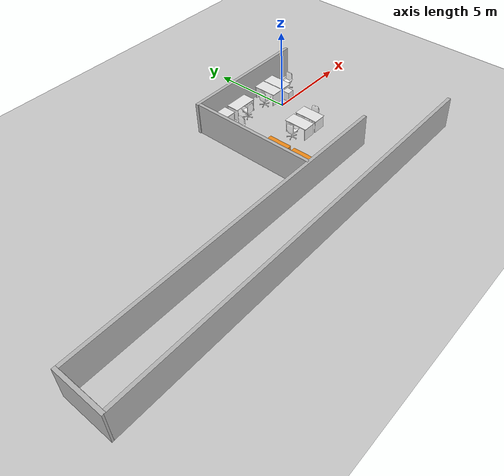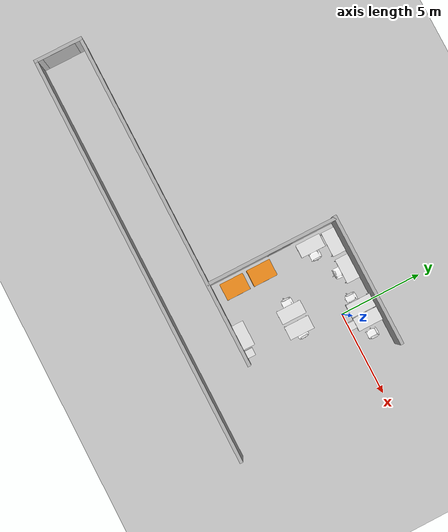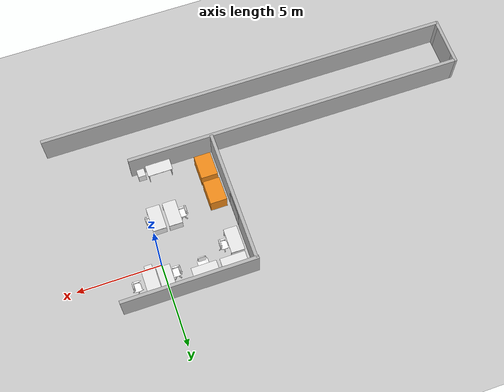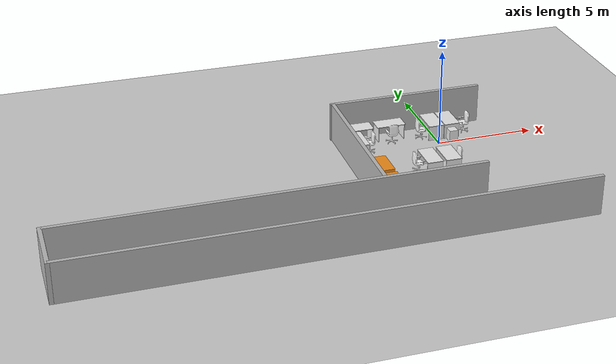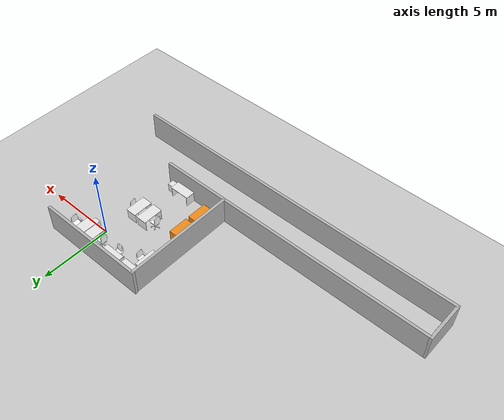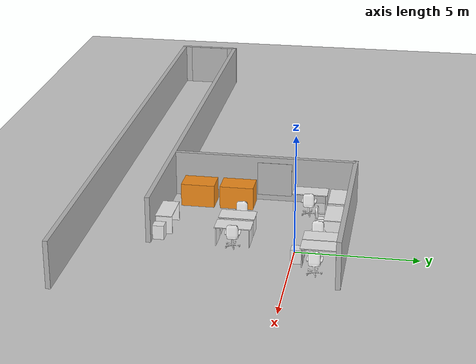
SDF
<sdf version="1.10">
 <world name="corridor">
  <model name="ground_plane">
   <static>1</static>
   <link name="link">
    <collision name="collision">
     <geometry>
      <plane><normal>0.000000 0.000000 1.000000</normal><size>100.000000 100.000000</size></plane>
     </geometry>
     <surface><friction><ode><mu>100.000000</mu><mu2>50.000000</mu2></ode></friction></surface>
    </collision>
    <visual name="visual">
     <cast_shadows>0</cast_shadows>
     <geometry>
      <plane><normal>0.000000 0.000000 1.000000</normal><size>100.000000 100.000000</size></plane>
     </geometry>
     <material>
      <script><uri>file://media/materials/scripts/gazebo.material</uri><name>Gazebo/Grey</name></script>
     </material>
    </visual>
    <velocity_decay><linear>0.000000</linear><angular>0.000000</angular></velocity_decay>
   </link>
  </model>
  <model name="wall_01_model">
   <pose>-8 -8.8 1.0 0.0 0.0 0.0</pose>
   <static>1</static>
   <link name="wall_01_body">
    <inertial>
     <mass>1.000000</mass>
     <inertia>
      <ixx>1.000000</ixx>
      <ixy>0.000000</ixy>
      <ixz>0.000000</ixz>
      <iyy>1.000000</iyy>
      <iyz>0.000000</iyz>
      <izz>1.000000</izz>
     </inertia>
    </inertial>
    <collision name="collision">
     <geometry><box><size>25.00000 0.200000 2.000000</size></box></geometry>
    </collision>
    <visual name="visual"><geometry><box><size>25.00000 0.200000 2.000000</size></box></geometry></visual>
    <velocity_decay><linear>0.000000</linear><angular>0.000000</angular></velocity_decay>
   </link>
  </model>
  <model name="wall_27_model">
   <pose>-20.5 -7.4 1.0 0.0 0.0 0.0</pose>
   <static>1</static>
   <link name="wall_27_body">
    <inertial>
     <mass>1.000000</mass>
     <inertia>
      <ixx>1.000000</ixx>
      <ixy>0.000000</ixy>
      <ixz>0.000000</ixz>
      <iyy>1.000000</iyy>
      <iyz>0.000000</iyz>
      <izz>1.000000</izz>
     </inertia>
    </inertial>
    <collision name="collision">
     <geometry><box><size>0.200000 3.000000 2.000000</size></box></geometry>
    </collision>
    <visual name="visual"><geometry><box><size>0.200000 3.000000 2.000000</size></box></geometry></visual>
    <velocity_decay><linear>0.000000</linear><angular>0.000000</angular></velocity_decay>
   </link>
  </model>
  <model name="wall_32_model">
   <pose>-1.15 2.0 1.0 0.0 0.0 0.0</pose>
   <static>1</static>
   <link name="wall_32_body">
    <inertial>
     <mass>1.000000</mass>
     <inertia>
      <ixx>1.000000</ixx>
      <ixy>0.000000</ixy>
      <ixz>0.000000</ixz>
      <iyy>1.000000</iyy>
      <iyz>0.000000</iyz>
      <izz>1.000000</izz>
     </inertia>
    </inertial>
    <collision name="collision">
     <geometry><box><size>8.000000 0.200000 2.000000</size></box></geometry>
    </collision>
    <visual name="visual"><geometry><box><size>8.000000 0.200000 2.000000</size></box></geometry></visual>
    <velocity_decay><linear>0.000000</linear><angular>0.000000</angular></velocity_decay>
   </link>
  </model>
  <model name="wall_33_model">
   <pose>-5.0 -2 1.0 0.0 0.0 0.0</pose>
   <static>1</static>
   <link name="wall_33_body">
    <inertial>
     <mass>1.000000</mass>
     <inertia>
      <ixx>1.000000</ixx>
      <ixy>0.000000</ixy>
      <ixz>0.000000</ixz>
      <iyy>1.000000</iyy>
      <iyz>0.000000</iyz>
      <izz>1.000000</izz>
     </inertia>
    </inertial>
    <collision name="collision">
     <geometry><box><size>0.200000 8.000000 2.000000</size></box></geometry>
    </collision>
    <visual name="visual"><geometry><box><size>0.200000 8.000000 2.000000</size></box></geometry></visual>
    <velocity_decay><linear>0.000000</linear><angular>0.000000</angular></velocity_decay>
   </link>
  </model>
  <model name="wall_35_model">
   <pose>-10.2 -6 1.0 0.0 0.0 0.0</pose>
   <static>1</static>
   <link name="wall_35_body">
    <inertial>
     <mass>1.000000</mass>
     <inertia>
      <ixx>1.000000</ixx>
      <ixy>0.000000</ixy>
      <ixz>0.000000</ixz>
      <iyy>1.000000</iyy>
      <iyz>0.000000</iyz>
      <izz>1.000000</izz>
     </inertia>
    </inertial>
    <collision name="collision"><geometry><box><size>20.5000 0.200000 2.000000</size></box></geometry></collision>
    <visual name="visual"><geometry><box><size>20.50000 0.200000 2.000000</size></box></geometry></visual>
    <velocity_decay><linear>0.000000</linear><angular>0.000000</angular></velocity_decay>
   </link>
  </model>
  <model name="poster_1_model">
   <pose>-4.88 -1.5 1.0 0.0 0.0 0.0</pose>
   <static>1</static>
   <link name="poster_1_body">
    <inertial>
     <mass>1.000000</mass>
     <inertia>
      <ixx>1.000000</ixx>
      <ixy>0.000000</ixy>
      <ixz>0.000000</ixz>
      <iyy>1.000000</iyy>
      <iyz>0.000000</iyz>
      <izz>1.000000</izz>
     </inertia>
    </inertial>
    <collision name="collision"><geometry><box><size>0.01000 1.5000 1.500000</size></box></geometry></collision>
    <visual name="visual">
     <geometry><box><size>0.01000 1.50000 1.500000</size></box></geometry>
     <material>
      <script>
       <uri>/home/marat/exchange_project_ws/src/collab_industrial_research/gz_world_package/models/materials/scripts/lirs.material</uri>
       <name>lirs/LIRS_wall</name>
      </script>
     </material>
    </visual>
    <velocity_decay><linear>0.000000</linear><angular>0.000000</angular></velocity_decay>
   </link>
  </model>
  <model name="poster_2_model">
   <pose>-20.4 -7.4 1.0 0.0 0.0 0.0</pose>
   <static>1</static>
   <link name="poster_2_body">
    <inertial>
     <mass>1.000000</mass>
     <inertia>
      <ixx>1.000000</ixx>
      <ixy>0.000000</ixy>
      <ixz>0.000000</ixz>
      <iyy>1.000000</iyy>
      <iyz>0.000000</iyz>
      <izz>1.000000</izz>
     </inertia>
    </inertial>
    <collision name="collision"><geometry><box><size>0.01000 2.0000 2.000000</size></box></geometry></collision>
    <visual name="visual">
     <geometry><box><size>0.01000 2.00000 2.000000</size></box></geometry>
     <material>
      <script>
       <uri>/home/marat/exchange_project_ws/src/collab_industrial_research/gz_world_package/models/materials/scripts/lirs.material</uri>
       <name>lirs/LIRS_wall</name>
      </script>
     </material>
    </visual>
    <velocity_decay><linear>0.000000</linear><angular>0.000000</angular></velocity_decay>
   </link>
  </model>
  <model name="cabinet_1">
   <static>0</static>
   <link name="cabinet_bottom_plate">
    <inertial>
     <pose>0.000000 0.000000 -1.000000 0.000000 0.000000 0.000000</pose>
     <inertia>
      <ixx>2.050000</ixx>
      <ixy>0.000000</ixy>
      <ixz>0.000000</ixz>
      <iyy>2.050000</iyy>
      <iyz>0.000000</iyz>
      <izz>2.050000</izz>
     </inertia>
     <mass>25.000000</mass>
    </inertial>
    <collision name="cabinet_bottom_plate_geom">
     <pose>0.000000 0.000000 0.010000 0.000000 0.000000 0.000000</pose>
     <geometry><box><size>1.0000 1.450000 1.00000</size></box></geometry>
    </collision>
    <visual name="cabinet_bottom_plate_geom_visual">
     <pose>0.000000 0.000000 0.010000 0.000000 0.000000 0.000000</pose>
     <geometry><box><size>1.00000 1.450000 1.0000</size></box></geometry>
     <material>
      <script>
       <uri>/home/marat/exchange_project_ws/src/collab_industrial_research/gz_world_package/models/materials/scripts/lirs.material</uri>
       <name>lirs/Orange_table</name>
      </script>
     </material>
    </visual>
    <velocity_decay><linear>0.000000</linear><angular>0.000000</angular></velocity_decay>
   </link>
   <pose>-4.2 -3 0.5 0.0 0.0 0.0</pose>
  </model>
  <model name="cabinet_2">
   <static>0</static>
   <link name="cabinet_bottom_plate">
    <inertial>
     <pose>0.000000 0.000000 -1.000000 0.000000 0.000000 0.000000</pose>
     <inertia>
      <ixx>2.050000</ixx>
      <ixy>0.000000</ixy>
      <ixz>0.000000</ixz>
      <iyy>2.050000</iyy>
      <iyz>0.000000</iyz>
      <izz>2.050000</izz>
     </inertia>
     <mass>25.000000</mass>
    </inertial>
    <collision name="cabinet_bottom_plate_geom">
     <pose>0.000000 0.000000 0.010000 0.000000 0.000000 0.000000</pose>
     <geometry><box><size>1.0000 1.450000 1.00000</size></box></geometry>
    </collision>
    <visual name="cabinet_bottom_plate_geom_visual">
     <pose>0.000000 0.000000 0.010000 0.000000 0.000000 0.000000</pose>
     <geometry><box><size>1.00000 1.450000 1.0000</size></box></geometry>
     <material>
      <script>
       <uri>/home/marat/exchange_project_ws/src/collab_industrial_research/gz_world_package/models/materials/scripts/lirs.material</uri>
       <name>lirs/Orange_table</name>
      </script>
     </material>
    </visual>
    <velocity_decay><linear>0.000000</linear><angular>0.000000</angular></velocity_decay>
   </link>
   <pose>-4.2 -4.7 0.5 0.0 0.0 0.0</pose>
  </model>
  <model name="cabinet_4">
   <static>0</static>
   <link name="cabinet_bottom_plate">
    <inertial>
     <pose>0.000000 0.000000 -1.000000 0.000000 0.000000 0.000000</pose>
     <inertia>
      <ixx>2.050000</ixx>
      <ixy>0.000000</ixy>
      <ixz>0.000000</ixz>
      <iyy>2.050000</iyy>
      <iyz>0.000000</iyz>
      <izz>2.050000</izz>
     </inertia>
     <mass>25.000000</mass>
    </inertial>
    <collision name="cabinet_bottom_plate_geom">
     <pose>0.000000 0.000000 0.010000 0.000000 0.000000 0.000000</pose>
     <geometry><box><size>0.4500 0.490000 .6000</size></box></geometry>
    </collision>
    <visual name="cabinet_bottom_plate_geom_visual">
     <pose>0.000000 0.000000 0.010000 0.000000 0.000000 0.000000</pose>
     <geometry><box><size>0.4500 0.490000 .6000</size></box></geometry>
     <material>
      <script>
       <uri>/home/marat/exchange_project_ws/src/collab_industrial_research/gz_world_package/models/materials/scripts/lirs.material</uri>
       <name>lirs/White_table</name>
      </script>
     </material>
    </visual>
    <velocity_decay><linear>0.000000</linear><angular>0.000000</angular></velocity_decay>
   </link>
   <pose>-0.50000 -5.67000 0.300000 0.000000 0.000000 0.000000</pose>
  </model>
  <model name="cabinet_5">
   <static>0</static>
   <link name="cabinet_bottom_plate">
    <inertial>
     <pose>0.000000 0.000000 -1.000000 0.000000 0.000000 0.000000</pose>
     <inertia>
      <ixx>2.050000</ixx>
      <ixy>0.000000</ixy>
      <ixz>0.000000</ixz>
      <iyy>2.050000</iyy>
      <iyz>0.000000</iyz>
      <izz>2.050000</izz>
     </inertia>
     <mass>25.000000</mass>
    </inertial>
    <collision name="cabinet_bottom_plate_geom">
     <pose>0.000000 0.000000 0.010000 0.000000 0.000000 0.000000</pose>
     <geometry><box><size>0.4500 0.490000 .6000</size></box></geometry>
    </collision>
    <visual name="cabinet_bottom_plate_geom_visual">
     <pose>0.000000 0.000000 0.010000 0.000000 0.000000 0.000000</pose>
     <geometry><box><size>0.4500 0.490000 .6000</size></box></geometry>
     <material>
      <script>
       <uri>/home/marat/exchange_project_ws/src/collab_industrial_research/gz_world_package/models/materials/scripts/lirs.material</uri>
       <name>lirs/White_table</name>
      </script>
     </material>
    </visual>
    <velocity_decay><linear>0.000000</linear><angular>0.000000</angular></velocity_decay>
   </link>
   <pose>0.79 0.2000 0.300000 0.000000 0.000000 0.000000</pose>
  </model>
  <model name="table_0">
   <static>0</static>
   <link name="link">
    <collision name="surface">
     <pose>0.000000 0.000000 0.800000 0.000000 0.000000 0.000000</pose>
     <geometry><box><size>1.500000 0.800000 0.030000</size></box></geometry>
    </collision>
    <visual name="visual1">
     <pose>0.000000 0.000000 0.8000000 0.000000 0.000000 0.000000</pose>
     <geometry><box><size>1.500000 0.800000 0.030000</size></box></geometry>
     <material>
      <script>
       <uri>/home/marat/exchange_project_ws/src/collab_industrial_research/gz_world_package/models/materials/scripts/lirs.material</uri>
       <name>lirs/White_table</name>
      </script>
     </material>
    </visual>
    <collision name="front_left_leg">
     <pose>0.680000 0.00000 0.400000 0.000000 0.000000 0.000000</pose>
     <geometry><box><size>0.0300000 0.800000 0.8</size></box></geometry>
    </collision>
    <visual name="front_left_leg">
     <pose>0.680000 0.00000 0.400000 0.000000 0.000000 0.000000</pose>
     <geometry><box><size>0.0300000 0.800000 0.8</size></box></geometry>
     <material>
      <script>
       <uri>/home/marat/exchange_project_ws/src/collab_industrial_research/gz_world_package/models/materials/scripts/lirs.material</uri>
       <name>lirs/White_table</name>
      </script>
     </material>
    </visual>
    <collision name="front_right_leg">
     <pose>-0.680000 0.00000 0.400000 0.000000 0.000000 0.000000</pose>
     <geometry><box><size>0.0300000 0.800000 0.8</size></box></geometry>
    </collision>
    <visual name="front_right_leg">
     <pose>-0.680000 0.00000 0.400000 0.000000 0.000000 0.000000</pose>
     <geometry><box><size>0.0300000 0.800000 0.8</size></box></geometry>
     <material>
      <script>
       <uri>/home/marat/exchange_project_ws/src/collab_industrial_research/gz_world_package/models/materials/scripts/lirs.material</uri>
       <name>lirs/White_table</name>
      </script>
     </material>
    </visual>
    <velocity_decay><linear>0.000000</linear><angular>0.000000</angular></velocity_decay>
   </link>
   <pose>-4.30000 0.15000 0.000000 0.000000 0.000000 -1.570796</pose>
  </model>
  <model name="table_01">
   <static>0</static>
   <link name="link">
    <collision name="surface">
     <pose>0.000000 0.000000 0.800000 0.000000 0.000000 0.000000</pose>
     <geometry><box><size>1.500000 0.800000 0.030000</size></box></geometry>
    </collision>
    <visual name="visual1">
     <pose>0.000000 0.000000 0.8000000 0.000000 0.000000 0.000000</pose>
     <geometry><box><size>1.500000 0.800000 0.030000</size></box></geometry>
     <material>
      <script>
       <uri>/home/marat/exchange_project_ws/src/collab_industrial_research/gz_world_package/models/materials/scripts/lirs.material</uri>
       <name>lirs/White_table</name>
      </script>
     </material>
    </visual>
    <collision name="front_left_leg">
     <pose>0.680000 0.00000 0.400000 0.000000 0.000000 0.000000</pose>
     <geometry><box><size>0.0300000 0.800000 0.8</size></box></geometry>
    </collision>
    <visual name="front_left_leg">
     <pose>0.680000 0.00000 0.400000 0.000000 0.000000 0.000000</pose>
     <geometry><box><size>0.0300000 0.800000 0.8</size></box></geometry>
     <material>
      <script>
       <uri>/home/marat/exchange_project_ws/src/collab_industrial_research/gz_world_package/models/materials/scripts/lirs.material</uri>
       <name>lirs/White_table</name>
      </script>
     </material>
    </visual>
    <collision name="front_right_leg">
     <pose>-0.680000 0.00000 0.400000 0.000000 0.000000 0.000000</pose>
     <geometry><box><size>0.0300000 0.800000 0.8</size></box></geometry>
    </collision>
    <visual name="front_right_leg">
     <pose>-0.680000 0.00000 0.400000 0.000000 0.000000 0.000000</pose>
     <geometry><box><size>0.0300000 0.800000 0.8</size></box></geometry>
     <material>
      <script>
       <uri>/home/marat/exchange_project_ws/src/collab_industrial_research/gz_world_package/models/materials/scripts/lirs.material</uri>
       <name>lirs/White_table</name>
      </script>
     </material>
    </visual>
    <velocity_decay><linear>0.000000</linear><angular>0.000000</angular></velocity_decay>
   </link>
   <pose>-3.9000 1.40000 0.000000 0.000000 0.000000 0</pose>
  </model>
  <model name="table_02">
   <static>0</static>
   <link name="link">
    <collision name="surface">
     <pose>0.000000 0.000000 0.800000 0.000000 0.000000 0.000000</pose>
     <geometry><box><size>1.500000 0.800000 0.030000</size></box></geometry>
    </collision>
    <visual name="visual1">
     <pose>0.000000 0.000000 0.8000000 0.000000 0.000000 0.000000</pose>
     <geometry><box><size>1.500000 0.800000 0.030000</size></box></geometry>
     <material>
      <script>
       <uri>/home/marat/exchange_project_ws/src/collab_industrial_research/gz_world_package/models/materials/scripts/lirs.material</uri>
       <name>lirs/White_table</name>
      </script>
     </material>
    </visual>
    <collision name="front_left_leg">
     <pose>0.680000 0.00000 0.400000 0.000000 0.000000 0.000000</pose>
     <geometry><box><size>0.0300000 0.800000 0.8</size></box></geometry>
    </collision>
    <visual name="front_left_leg">
     <pose>0.680000 0.00000 0.400000 0.000000 0.000000 0.000000</pose>
     <geometry><box><size>0.0300000 0.800000 0.8</size></box></geometry>
     <material>
      <script>
       <uri>/home/marat/exchange_project_ws/src/collab_industrial_research/gz_world_package/models/materials/scripts/lirs.material</uri>
       <name>lirs/White_table</name>
      </script>
     </material>
    </visual>
    <collision name="front_right_leg">
     <pose>-0.680000 0.00000 0.400000 0.000000 0.000000 0.000000</pose>
     <geometry><box><size>0.0300000 0.800000 0.8</size></box></geometry>
    </collision>
    <visual name="front_right_leg">
     <pose>-0.680000 0.00000 0.400000 0.000000 0.000000 0.000000</pose>
     <geometry><box><size>0.0300000 0.800000 0.8</size></box></geometry>
     <material>
      <script>
       <uri>/home/marat/exchange_project_ws/src/collab_industrial_research/gz_world_package/models/materials/scripts/lirs.material</uri>
       <name>lirs/White_table</name>
      </script>
     </material>
    </visual>
    <velocity_decay><linear>0.000000</linear><angular>0.000000</angular></velocity_decay>
   </link>
   <pose>-2.2000 1.40000 0.000000 0.000000 0.000000 0</pose>
  </model>
  <model name="table_03">
   <static>0</static>
   <link name="link">
    <collision name="surface">
     <pose>0.000000 0.000000 0.800000 0.000000 0.000000 0.000000</pose>
     <geometry><box><size>1.500000 0.800000 0.030000</size></box></geometry>
    </collision>
    <visual name="visual1">
     <pose>0.000000 0.000000 0.8000000 0.000000 0.000000 0.000000</pose>
     <geometry><box><size>1.500000 0.800000 0.030000</size></box></geometry>
     <material>
      <script>
       <uri>/home/marat/exchange_project_ws/src/collab_industrial_research/gz_world_package/models/materials/scripts/lirs.material</uri>
       <name>lirs/White_table</name>
      </script>
     </material>
    </visual>
    <collision name="front_left_leg">
     <pose>0.680000 0.00000 0.400000 0.000000 0.000000 0.000000</pose>
     <geometry><box><size>0.0300000 0.800000 0.8</size></box></geometry>
    </collision>
    <visual name="front_left_leg">
     <pose>0.680000 0.00000 0.400000 0.000000 0.000000 0.000000</pose>
     <geometry><box><size>0.0300000 0.800000 0.8</size></box></geometry>
     <material>
      <script>
       <uri>/home/marat/exchange_project_ws/src/collab_industrial_research/gz_world_package/models/materials/scripts/lirs.material</uri>
       <name>lirs/White_table</name>
      </script>
     </material>
    </visual>
    <collision name="front_right_leg">
     <pose>-0.680000 0.00000 0.400000 0.000000 0.000000 0.000000</pose>
     <geometry><box><size>0.0300000 0.800000 0.8</size></box></geometry>
    </collision>
    <visual name="front_right_leg">
     <pose>-0.680000 0.00000 0.400000 0.000000 0.000000 0.000000</pose>
     <geometry><box><size>0.0300000 0.800000 0.8</size></box></geometry>
     <material>
      <script>
       <uri>/home/marat/exchange_project_ws/src/collab_industrial_research/gz_world_package/models/materials/scripts/lirs.material</uri>
       <name>lirs/White_table</name>
      </script>
     </material>
    </visual>
    <velocity_decay><linear>0.000000</linear><angular>0.000000</angular></velocity_decay>
   </link>
   <pose>0.0000 1.1000 0.000000 0.000000 0.000000 -1.57</pose>
  </model>
  <model name="table_04">
   <static>0</static>
   <link name="link">
    <collision name="surface">
     <pose>0.000000 0.000000 0.800000 0.000000 0.000000 0.000000</pose>
     <geometry><box><size>1.500000 0.800000 0.030000</size></box></geometry>
    </collision>
    <visual name="visual1">
     <pose>0.000000 0.000000 0.8000000 0.000000 0.000000 0.000000</pose>
     <geometry><box><size>1.500000 0.800000 0.030000</size></box></geometry>
     <material>
      <script>
       <uri>/home/marat/exchange_project_ws/src/collab_industrial_research/gz_world_package/models/materials/scripts/lirs.material</uri>
       <name>lirs/White_table</name>
      </script>
     </material>
    </visual>
    <collision name="front_left_leg">
     <pose>0.680000 0.00000 0.400000 0.000000 0.000000 0.000000</pose>
     <geometry><box><size>0.0300000 0.800000 0.8</size></box></geometry>
    </collision>
    <visual name="front_left_leg">
     <pose>0.680000 0.00000 0.400000 0.000000 0.000000 0.000000</pose>
     <geometry><box><size>0.0300000 0.800000 0.8</size></box></geometry>
     <material>
      <script>
       <uri>/home/marat/exchange_project_ws/src/collab_industrial_research/gz_world_package/models/materials/scripts/lirs.material</uri>
       <name>lirs/White_table</name>
      </script>
     </material>
    </visual>
    <collision name="front_right_leg">
     <pose>-0.680000 0.00000 0.400000 0.000000 0.000000 0.000000</pose>
     <geometry><box><size>0.0300000 0.800000 0.8</size></box></geometry>
    </collision>
    <visual name="front_right_leg">
     <pose>-0.680000 0.00000 0.400000 0.000000 0.000000 0.000000</pose>
     <geometry><box><size>0.0300000 0.800000 0.8</size></box></geometry>
     <material>
      <script>
       <uri>/home/marat/exchange_project_ws/src/collab_industrial_research/gz_world_package/models/materials/scripts/lirs.material</uri>
       <name>lirs/White_table</name>
      </script>
     </material>
    </visual>
    <velocity_decay><linear>0.000000</linear><angular>0.000000</angular></velocity_decay>
   </link>
   <pose>0.8400 1.1000 0.000000 0.000000 0.000000 -1.57</pose>
  </model>
  <model name="table_05">
   <static>0</static>
   <link name="link">
    <collision name="surface">
     <pose>0.000000 0.000000 0.800000 0.000000 0.000000 0.000000</pose>
     <geometry><box><size>1.500000 0.800000 0.030000</size></box></geometry>
    </collision>
    <visual name="visual1">
     <pose>0.000000 0.000000 0.8000000 0.000000 0.000000 0.000000</pose>
     <geometry><box><size>1.500000 0.800000 0.030000</size></box></geometry>
     <material>
      <script>
       <uri>/home/marat/exchange_project_ws/src/collab_industrial_research/gz_world_package/models/materials/scripts/lirs.material</uri>
       <name>lirs/White_table</name>
      </script>
     </material>
    </visual>
    <collision name="front_left_leg">
     <pose>0.680000 0.00000 0.400000 0.000000 0.000000 0.000000</pose>
     <geometry><box><size>0.0300000 0.800000 0.8</size></box></geometry>
    </collision>
    <visual name="front_left_leg">
     <pose>0.680000 0.00000 0.400000 0.000000 0.000000 0.000000</pose>
     <geometry><box><size>0.0300000 0.800000 0.8</size></box></geometry>
     <material>
      <script>
       <uri>/home/marat/exchange_project_ws/src/collab_industrial_research/gz_world_package/models/materials/scripts/lirs.material</uri>
       <name>lirs/White_table</name>
      </script>
     </material>
    </visual>
    <collision name="front_right_leg">
     <pose>-0.680000 0.00000 0.400000 0.000000 0.000000 0.000000</pose>
     <geometry><box><size>0.0300000 0.800000 0.8</size></box></geometry>
    </collision>
    <visual name="front_right_leg">
     <pose>-0.680000 0.00000 0.400000 0.000000 0.000000 0.000000</pose>
     <geometry><box><size>0.0300000 0.800000 0.8</size></box></geometry>
     <material>
      <script>
       <uri>/home/marat/exchange_project_ws/src/collab_industrial_research/gz_world_package/models/materials/scripts/lirs.material</uri>
       <name>lirs/White_table</name>
      </script>
     </material>
    </visual>
    <velocity_decay><linear>0.000000</linear><angular>0.000000</angular></velocity_decay>
   </link>
   <pose>-1.470000 -2.5500 0.000000 0.000000 0.000000 -1.570796</pose>
  </model>
  <model name="table_06">
   <static>0</static>
   <link name="link">
    <collision name="surface">
     <pose>0.000000 0.000000 0.800000 0.000000 0.000000 0.000000</pose>
     <geometry><box><size>1.500000 0.800000 0.030000</size></box></geometry>
    </collision>
    <visual name="visual1">
     <pose>0.000000 0.000000 0.8000000 0.000000 0.000000 0.000000</pose>
     <geometry><box><size>1.500000 0.800000 0.030000</size></box></geometry>
     <material>
      <script>
       <uri>/home/marat/exchange_project_ws/src/collab_industrial_research/gz_world_package/models/materials/scripts/lirs.material</uri>
       <name>lirs/White_table</name>
      </script>
     </material>
    </visual>
    <collision name="front_left_leg">
     <pose>0.680000 0.00000 0.400000 0.000000 0.000000 0.000000</pose>
     <geometry><box><size>0.0300000 0.800000 0.8</size></box></geometry>
    </collision>
    <visual name="front_left_leg">
     <pose>0.680000 0.00000 0.400000 0.000000 0.000000 0.000000</pose>
     <geometry><box><size>0.0300000 0.800000 0.8</size></box></geometry>
     <material>
      <script>
       <uri>/home/marat/exchange_project_ws/src/collab_industrial_research/gz_world_package/models/materials/scripts/lirs.material</uri>
       <name>lirs/White_table</name>
      </script>
     </material>
    </visual>
    <collision name="front_right_leg">
     <pose>-0.680000 0.00000 0.400000 0.000000 0.000000 0.000000</pose>
     <geometry><box><size>0.0300000 0.800000 0.8</size></box></geometry>
    </collision>
    <visual name="front_right_leg">
     <pose>-0.680000 0.00000 0.400000 0.000000 0.000000 0.000000</pose>
     <geometry><box><size>0.0300000 0.800000 0.8</size></box></geometry>
     <material>
      <script>
       <uri>/home/marat/exchange_project_ws/src/collab_industrial_research/gz_world_package/models/materials/scripts/lirs.material</uri>
       <name>lirs/White_table</name>
      </script>
     </material>
    </visual>
    <velocity_decay><linear>0.000000</linear><angular>0.000000</angular></velocity_decay>
   </link>
   <pose>-.50000 -2.55000 0.000000 0.000000 0.000000 -1.570796</pose>
  </model>
  <model name="table_07">
   <static>0</static>
   <link name="link">
    <collision name="surface">
     <pose>0.000000 0.000000 0.800000 0.000000 0.000000 0.000000</pose>
     <geometry><box><size>1.500000 0.800000 0.030000</size></box></geometry>
    </collision>
    <visual name="visual1">
     <pose>0.000000 0.000000 0.8000000 0.000000 0.000000 0.000000</pose>
     <geometry><box><size>1.500000 0.800000 0.030000</size></box></geometry>
     <material>
      <script>
       <uri>/home/marat/exchange_project_ws/src/collab_industrial_research/gz_world_package/models/materials/scripts/lirs.material</uri>
       <name>lirs/White_table</name>
      </script>
     </material>
    </visual>
    <collision name="front_left_leg">
     <pose>0.680000 0.00000 0.400000 0.000000 0.000000 0.000000</pose>
     <geometry><box><size>0.0300000 0.800000 0.8</size></box></geometry>
    </collision>
    <visual name="front_left_leg">
     <pose>0.680000 0.00000 0.400000 0.000000 0.000000 0.000000</pose>
     <geometry><box><size>0.0300000 0.800000 0.8</size></box></geometry>
     <material>
      <script>
       <uri>/home/marat/exchange_project_ws/src/collab_industrial_research/gz_world_package/models/materials/scripts/lirs.material</uri>
       <name>lirs/White_table</name>
      </script>
     </material>
    </visual>
    <collision name="front_right_leg">
     <pose>-0.680000 0.00000 0.400000 0.000000 0.000000 0.000000</pose>
     <geometry><box><size>0.0300000 0.800000 0.8</size></box></geometry>
    </collision>
    <visual name="front_right_leg">
     <pose>-0.680000 0.00000 0.400000 0.000000 0.000000 0.000000</pose>
     <geometry><box><size>0.0300000 0.800000 0.8</size></box></geometry>
     <material>
      <script>
       <uri>/home/marat/exchange_project_ws/src/collab_industrial_research/gz_world_package/models/materials/scripts/lirs.material</uri>
       <name>lirs/White_table</name>
      </script>
     </material>
    </visual>
    <velocity_decay><linear>0.000000</linear><angular>0.000000</angular></velocity_decay>
   </link>
   <pose>-1.57000 -5.6000 0.000000 0.000000 0.000000 0</pose>
  </model>
  <include>
   <uri>/home/marat/exchange_project_ws/src/collab_industrial_research/gz_world_package/models/boss_arm_chair</uri>
   <name>chair_0</name>
   <pose>-2.23 -2.32 0 0 0 -1.57</pose>
  </include>
  <include>
   <uri>/home/marat/exchange_project_ws/src/collab_industrial_research/gz_world_package/models/boss_arm_chair</uri>
   <name>chair_1</name>
   <pose>0.06 -2.7 0 0 0 1.65</pose>
  </include>
  <include>
   <uri>/home/marat/exchange_project_ws/src/collab_industrial_research/gz_world_package/models/boss_arm_chair</uri>
   <name>chair_2</name>
   <pose>-3.5 -0.02 0 0 0 1.57</pose>
  </include>
  <include>
   <uri>/home/marat/exchange_project_ws/src/collab_industrial_research/gz_world_package/models/boss_arm_chair</uri>
   <name>chair_3</name>
   <pose>-2.4 0.67 0 0 0 0</pose>
  </include>
  <include>
   <uri>/home/marat/exchange_project_ws/src/collab_industrial_research/gz_world_package/models/boss_arm_chair</uri>
   <name>chair_4</name>
   <pose>-0.83 1.02 0 0 0 -1.57</pose>
  </include>
  <include>
   <uri>/home/marat/exchange_project_ws/src/collab_industrial_research/gz_world_package/models/boss_arm_chair</uri>
   <name>chair_5</name>
   <pose>1.86 0.81 0 0 0 1.57</pose>
  </include>
 </world>
</sdf>
